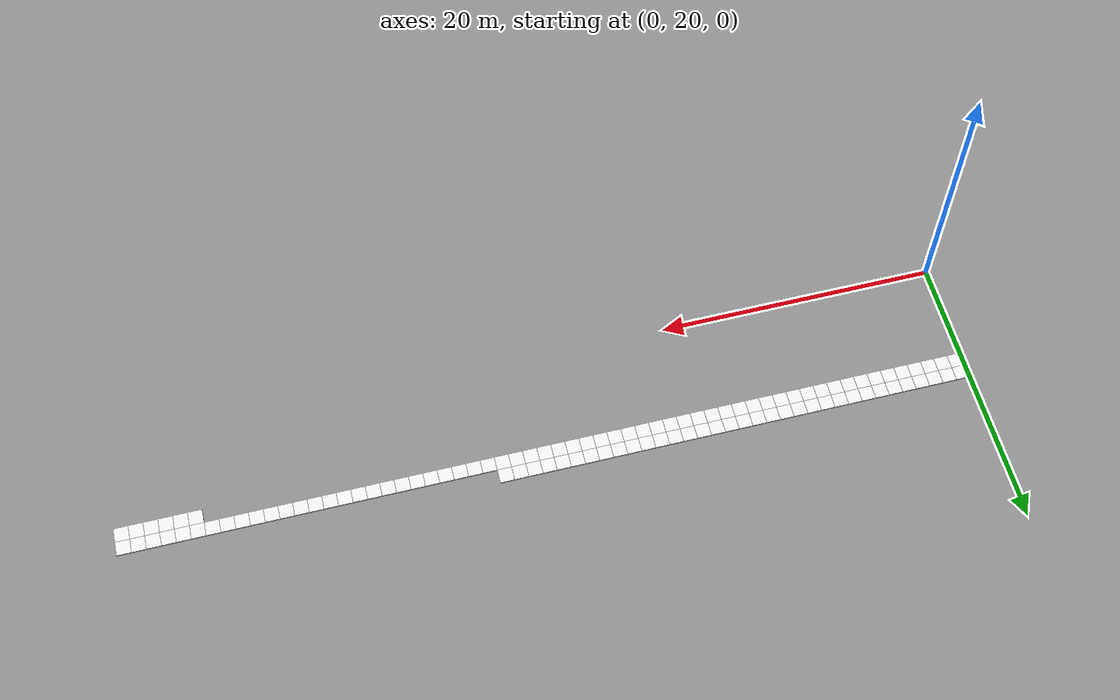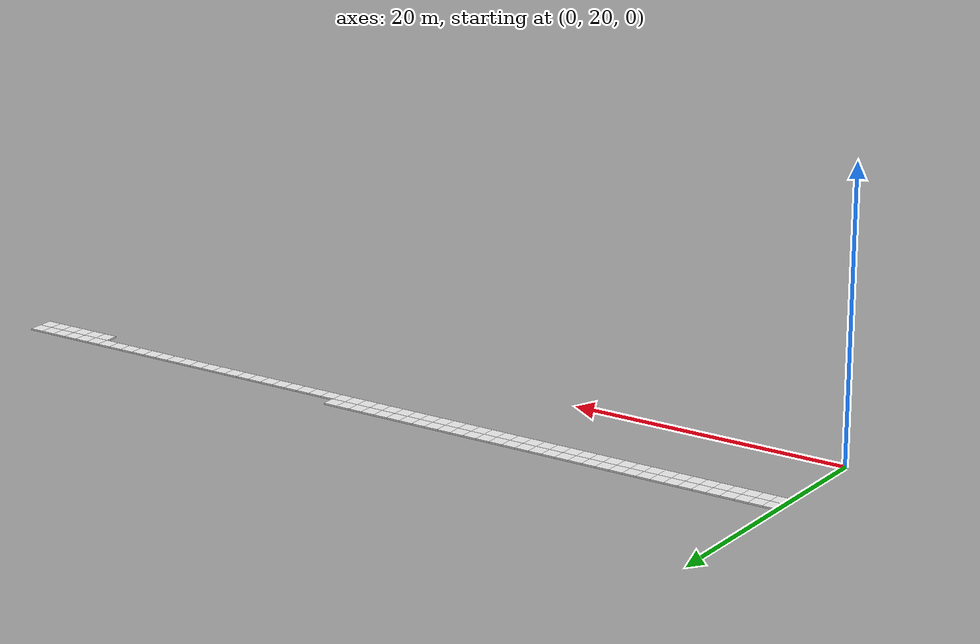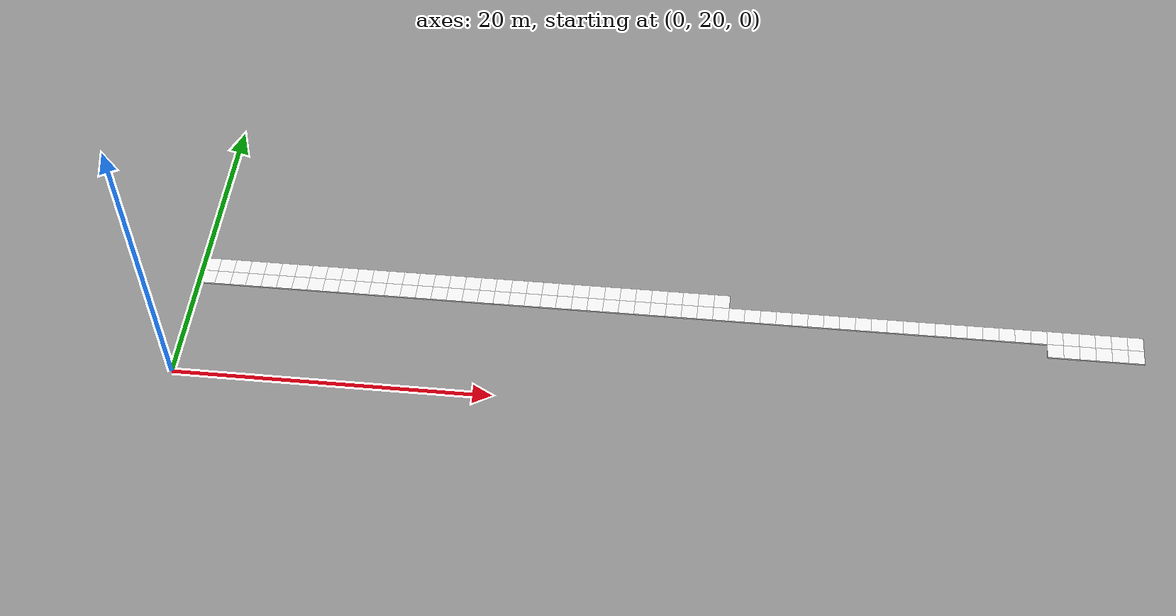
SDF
<sdf version="1.6">
 <world name="grid_world">
  <model name="cell_54_26">
   <static>true</static>
   <link name="link">
    <collision name="collision"><geometry><box><size>1 1 0.1</size></box></geometry></collision>
    <visual name="visual">
     <geometry><box><size>1 1 0.1</size></box></geometry>
     <material>
      <script><uri>file://media/materials/scripts/gazebo.material</uri><name>Gazebo/White</name></script>
     </material>
    </visual>
    <pose>54.5 26.5 0.05 0 0 0</pose>
   </link>
  </model>
  <model name="cell_55_26">
   <static>true</static>
   <link name="link">
    <collision name="collision"><geometry><box><size>1 1 0.1</size></box></geometry></collision>
    <visual name="visual">
     <geometry><box><size>1 1 0.1</size></box></geometry>
     <material>
      <script><uri>file://media/materials/scripts/gazebo.material</uri><name>Gazebo/White</name></script>
     </material>
    </visual>
    <pose>55.5 26.5 0.05 0 0 0</pose>
   </link>
  </model>
  <model name="cell_56_26">
   <static>true</static>
   <link name="link">
    <collision name="collision"><geometry><box><size>1 1 0.1</size></box></geometry></collision>
    <visual name="visual">
     <geometry><box><size>1 1 0.1</size></box></geometry>
     <material>
      <script><uri>file://media/materials/scripts/gazebo.material</uri><name>Gazebo/White</name></script>
     </material>
    </visual>
    <pose>56.5 26.5 0.05 0 0 0</pose>
   </link>
  </model>
  <model name="cell_57_26">
   <static>true</static>
   <link name="link">
    <collision name="collision"><geometry><box><size>1 1 0.1</size></box></geometry></collision>
    <visual name="visual">
     <geometry><box><size>1 1 0.1</size></box></geometry>
     <material>
      <script><uri>file://media/materials/scripts/gazebo.material</uri><name>Gazebo/White</name></script>
     </material>
    </visual>
    <pose>57.5 26.5 0.05 0 0 0</pose>
   </link>
  </model>
  <model name="cell_58_26">
   <static>true</static>
   <link name="link">
    <collision name="collision"><geometry><box><size>1 1 0.1</size></box></geometry></collision>
    <visual name="visual">
     <geometry><box><size>1 1 0.1</size></box></geometry>
     <material>
      <script><uri>file://media/materials/scripts/gazebo.material</uri><name>Gazebo/White</name></script>
     </material>
    </visual>
    <pose>58.5 26.5 0.05 0 0 0</pose>
   </link>
  </model>
  <model name="cell_59_26">
   <static>true</static>
   <link name="link">
    <collision name="collision"><geometry><box><size>1 1 0.1</size></box></geometry></collision>
    <visual name="visual">
     <geometry><box><size>1 1 0.1</size></box></geometry>
     <material>
      <script><uri>file://media/materials/scripts/gazebo.material</uri><name>Gazebo/White</name></script>
     </material>
    </visual>
    <pose>59.5 26.5 0.05 0 0 0</pose>
   </link>
  </model>
  <model name="cell_0_27">
   <static>true</static>
   <link name="link">
    <collision name="collision"><geometry><box><size>1 1 0.1</size></box></geometry></collision>
    <visual name="visual">
     <geometry><box><size>1 1 0.1</size></box></geometry>
     <material>
      <script><uri>file://media/materials/scripts/gazebo.material</uri><name>Gazebo/White</name></script>
     </material>
    </visual>
    <pose>0.5 27.5 0.05 0 0 0</pose>
   </link>
  </model>
  <model name="cell_1_27">
   <static>true</static>
   <link name="link">
    <collision name="collision"><geometry><box><size>1 1 0.1</size></box></geometry></collision>
    <visual name="visual">
     <geometry><box><size>1 1 0.1</size></box></geometry>
     <material>
      <script><uri>file://media/materials/scripts/gazebo.material</uri><name>Gazebo/White</name></script>
     </material>
    </visual>
    <pose>1.5 27.5 0.05 0 0 0</pose>
   </link>
  </model>
  <model name="cell_2_27">
   <static>true</static>
   <link name="link">
    <collision name="collision"><geometry><box><size>1 1 0.1</size></box></geometry></collision>
    <visual name="visual">
     <geometry><box><size>1 1 0.1</size></box></geometry>
     <material>
      <script><uri>file://media/materials/scripts/gazebo.material</uri><name>Gazebo/White</name></script>
     </material>
    </visual>
    <pose>2.5 27.5 0.05 0 0 0</pose>
   </link>
  </model>
  <model name="cell_3_27">
   <static>true</static>
   <link name="link">
    <collision name="collision"><geometry><box><size>1 1 0.1</size></box></geometry></collision>
    <visual name="visual">
     <geometry><box><size>1 1 0.1</size></box></geometry>
     <material>
      <script><uri>file://media/materials/scripts/gazebo.material</uri><name>Gazebo/White</name></script>
     </material>
    </visual>
    <pose>3.5 27.5 0.05 0 0 0</pose>
   </link>
  </model>
  <model name="cell_4_27">
   <static>true</static>
   <link name="link">
    <collision name="collision"><geometry><box><size>1 1 0.1</size></box></geometry></collision>
    <visual name="visual">
     <geometry><box><size>1 1 0.1</size></box></geometry>
     <material>
      <script><uri>file://media/materials/scripts/gazebo.material</uri><name>Gazebo/White</name></script>
     </material>
    </visual>
    <pose>4.5 27.5 0.05 0 0 0</pose>
   </link>
  </model>
  <model name="cell_5_27">
   <static>true</static>
   <link name="link">
    <collision name="collision"><geometry><box><size>1 1 0.1</size></box></geometry></collision>
    <visual name="visual">
     <geometry><box><size>1 1 0.1</size></box></geometry>
     <material>
      <script><uri>file://media/materials/scripts/gazebo.material</uri><name>Gazebo/White</name></script>
     </material>
    </visual>
    <pose>5.5 27.5 0.05 0 0 0</pose>
   </link>
  </model>
  <model name="cell_6_27">
   <static>true</static>
   <link name="link">
    <collision name="collision"><geometry><box><size>1 1 0.1</size></box></geometry></collision>
    <visual name="visual">
     <geometry><box><size>1 1 0.1</size></box></geometry>
     <material>
      <script><uri>file://media/materials/scripts/gazebo.material</uri><name>Gazebo/White</name></script>
     </material>
    </visual>
    <pose>6.5 27.5 0.05 0 0 0</pose>
   </link>
  </model>
  <model name="cell_7_27">
   <static>true</static>
   <link name="link">
    <collision name="collision"><geometry><box><size>1 1 0.1</size></box></geometry></collision>
    <visual name="visual">
     <geometry><box><size>1 1 0.1</size></box></geometry>
     <material>
      <script><uri>file://media/materials/scripts/gazebo.material</uri><name>Gazebo/White</name></script>
     </material>
    </visual>
    <pose>7.5 27.5 0.05 0 0 0</pose>
   </link>
  </model>
  <model name="cell_8_27">
   <static>true</static>
   <link name="link">
    <collision name="collision"><geometry><box><size>1 1 0.1</size></box></geometry></collision>
    <visual name="visual">
     <geometry><box><size>1 1 0.1</size></box></geometry>
     <material>
      <script><uri>file://media/materials/scripts/gazebo.material</uri><name>Gazebo/White</name></script>
     </material>
    </visual>
    <pose>8.5 27.5 0.05 0 0 0</pose>
   </link>
  </model>
  <model name="cell_9_27">
   <static>true</static>
   <link name="link">
    <collision name="collision"><geometry><box><size>1 1 0.1</size></box></geometry></collision>
    <visual name="visual">
     <geometry><box><size>1 1 0.1</size></box></geometry>
     <material>
      <script><uri>file://media/materials/scripts/gazebo.material</uri><name>Gazebo/White</name></script>
     </material>
    </visual>
    <pose>9.5 27.5 0.05 0 0 0</pose>
   </link>
  </model>
  <model name="cell_10_27">
   <static>true</static>
   <link name="link">
    <collision name="collision"><geometry><box><size>1 1 0.1</size></box></geometry></collision>
    <visual name="visual">
     <geometry><box><size>1 1 0.1</size></box></geometry>
     <material>
      <script><uri>file://media/materials/scripts/gazebo.material</uri><name>Gazebo/White</name></script>
     </material>
    </visual>
    <pose>10.5 27.5 0.05 0 0 0</pose>
   </link>
  </model>
  <model name="cell_11_27">
   <static>true</static>
   <link name="link">
    <collision name="collision"><geometry><box><size>1 1 0.1</size></box></geometry></collision>
    <visual name="visual">
     <geometry><box><size>1 1 0.1</size></box></geometry>
     <material>
      <script><uri>file://media/materials/scripts/gazebo.material</uri><name>Gazebo/White</name></script>
     </material>
    </visual>
    <pose>11.5 27.5 0.05 0 0 0</pose>
   </link>
  </model>
  <model name="cell_12_27">
   <static>true</static>
   <link name="link">
    <collision name="collision"><geometry><box><size>1 1 0.1</size></box></geometry></collision>
    <visual name="visual">
     <geometry><box><size>1 1 0.1</size></box></geometry>
     <material>
      <script><uri>file://media/materials/scripts/gazebo.material</uri><name>Gazebo/White</name></script>
     </material>
    </visual>
    <pose>12.5 27.5 0.05 0 0 0</pose>
   </link>
  </model>
  <model name="cell_13_27">
   <static>true</static>
   <link name="link">
    <collision name="collision"><geometry><box><size>1 1 0.1</size></box></geometry></collision>
    <visual name="visual">
     <geometry><box><size>1 1 0.1</size></box></geometry>
     <material>
      <script><uri>file://media/materials/scripts/gazebo.material</uri><name>Gazebo/White</name></script>
     </material>
    </visual>
    <pose>13.5 27.5 0.05 0 0 0</pose>
   </link>
  </model>
  <model name="cell_14_27">
   <static>true</static>
   <link name="link">
    <collision name="collision"><geometry><box><size>1 1 0.1</size></box></geometry></collision>
    <visual name="visual">
     <geometry><box><size>1 1 0.1</size></box></geometry>
     <material>
      <script><uri>file://media/materials/scripts/gazebo.material</uri><name>Gazebo/White</name></script>
     </material>
    </visual>
    <pose>14.5 27.5 0.05 0 0 0</pose>
   </link>
  </model>
  <model name="cell_15_27">
   <static>true</static>
   <link name="link">
    <collision name="collision"><geometry><box><size>1 1 0.1</size></box></geometry></collision>
    <visual name="visual">
     <geometry><box><size>1 1 0.1</size></box></geometry>
     <material>
      <script><uri>file://media/materials/scripts/gazebo.material</uri><name>Gazebo/White</name></script>
     </material>
    </visual>
    <pose>15.5 27.5 0.05 0 0 0</pose>
   </link>
  </model>
  <model name="cell_16_27">
   <static>true</static>
   <link name="link">
    <collision name="collision"><geometry><box><size>1 1 0.1</size></box></geometry></collision>
    <visual name="visual">
     <geometry><box><size>1 1 0.1</size></box></geometry>
     <material>
      <script><uri>file://media/materials/scripts/gazebo.material</uri><name>Gazebo/White</name></script>
     </material>
    </visual>
    <pose>16.5 27.5 0.05 0 0 0</pose>
   </link>
  </model>
  <model name="cell_17_27">
   <static>true</static>
   <link name="link">
    <collision name="collision"><geometry><box><size>1 1 0.1</size></box></geometry></collision>
    <visual name="visual">
     <geometry><box><size>1 1 0.1</size></box></geometry>
     <material>
      <script><uri>file://media/materials/scripts/gazebo.material</uri><name>Gazebo/White</name></script>
     </material>
    </visual>
    <pose>17.5 27.5 0.05 0 0 0</pose>
   </link>
  </model>
  <model name="cell_18_27">
   <static>true</static>
   <link name="link">
    <collision name="collision"><geometry><box><size>1 1 0.1</size></box></geometry></collision>
    <visual name="visual">
     <geometry><box><size>1 1 0.1</size></box></geometry>
     <material>
      <script><uri>file://media/materials/scripts/gazebo.material</uri><name>Gazebo/White</name></script>
     </material>
    </visual>
    <pose>18.5 27.5 0.05 0 0 0</pose>
   </link>
  </model>
  <model name="cell_19_27">
   <static>true</static>
   <link name="link">
    <collision name="collision"><geometry><box><size>1 1 0.1</size></box></geometry></collision>
    <visual name="visual">
     <geometry><box><size>1 1 0.1</size></box></geometry>
     <material>
      <script><uri>file://media/materials/scripts/gazebo.material</uri><name>Gazebo/White</name></script>
     </material>
    </visual>
    <pose>19.5 27.5 0.05 0 0 0</pose>
   </link>
  </model>
  <model name="cell_20_27">
   <static>true</static>
   <link name="link">
    <collision name="collision"><geometry><box><size>1 1 0.1</size></box></geometry></collision>
    <visual name="visual">
     <geometry><box><size>1 1 0.1</size></box></geometry>
     <material>
      <script><uri>file://media/materials/scripts/gazebo.material</uri><name>Gazebo/White</name></script>
     </material>
    </visual>
    <pose>20.5 27.5 0.05 0 0 0</pose>
   </link>
  </model>
  <model name="cell_21_27">
   <static>true</static>
   <link name="link">
    <collision name="collision"><geometry><box><size>1 1 0.1</size></box></geometry></collision>
    <visual name="visual">
     <geometry><box><size>1 1 0.1</size></box></geometry>
     <material>
      <script><uri>file://media/materials/scripts/gazebo.material</uri><name>Gazebo/White</name></script>
     </material>
    </visual>
    <pose>21.5 27.5 0.05 0 0 0</pose>
   </link>
  </model>
  <model name="cell_22_27">
   <static>true</static>
   <link name="link">
    <collision name="collision"><geometry><box><size>1 1 0.1</size></box></geometry></collision>
    <visual name="visual">
     <geometry><box><size>1 1 0.1</size></box></geometry>
     <material>
      <script><uri>file://media/materials/scripts/gazebo.material</uri><name>Gazebo/White</name></script>
     </material>
    </visual>
    <pose>22.5 27.5 0.05 0 0 0</pose>
   </link>
  </model>
  <model name="cell_23_27">
   <static>true</static>
   <link name="link">
    <collision name="collision"><geometry><box><size>1 1 0.1</size></box></geometry></collision>
    <visual name="visual">
     <geometry><box><size>1 1 0.1</size></box></geometry>
     <material>
      <script><uri>file://media/materials/scripts/gazebo.material</uri><name>Gazebo/White</name></script>
     </material>
    </visual>
    <pose>23.5 27.5 0.05 0 0 0</pose>
   </link>
  </model>
  <model name="cell_24_27">
   <static>true</static>
   <link name="link">
    <collision name="collision"><geometry><box><size>1 1 0.1</size></box></geometry></collision>
    <visual name="visual">
     <geometry><box><size>1 1 0.1</size></box></geometry>
     <material>
      <script><uri>file://media/materials/scripts/gazebo.material</uri><name>Gazebo/White</name></script>
     </material>
    </visual>
    <pose>24.5 27.5 0.05 0 0 0</pose>
   </link>
  </model>
  <model name="cell_25_27">
   <static>true</static>
   <link name="link">
    <collision name="collision"><geometry><box><size>1 1 0.1</size></box></geometry></collision>
    <visual name="visual">
     <geometry><box><size>1 1 0.1</size></box></geometry>
     <material>
      <script><uri>file://media/materials/scripts/gazebo.material</uri><name>Gazebo/White</name></script>
     </material>
    </visual>
    <pose>25.5 27.5 0.05 0 0 0</pose>
   </link>
  </model>
  <model name="cell_26_27">
   <static>true</static>
   <link name="link">
    <collision name="collision"><geometry><box><size>1 1 0.1</size></box></geometry></collision>
    <visual name="visual">
     <geometry><box><size>1 1 0.1</size></box></geometry>
     <material>
      <script><uri>file://media/materials/scripts/gazebo.material</uri><name>Gazebo/White</name></script>
     </material>
    </visual>
    <pose>26.5 27.5 0.05 0 0 0</pose>
   </link>
  </model>
  <model name="cell_27_27">
   <static>true</static>
   <link name="link">
    <collision name="collision"><geometry><box><size>1 1 0.1</size></box></geometry></collision>
    <visual name="visual">
     <geometry><box><size>1 1 0.1</size></box></geometry>
     <material>
      <script><uri>file://media/materials/scripts/gazebo.material</uri><name>Gazebo/White</name></script>
     </material>
    </visual>
    <pose>27.5 27.5 0.05 0 0 0</pose>
   </link>
  </model>
  <model name="cell_28_27">
   <static>true</static>
   <link name="link">
    <collision name="collision"><geometry><box><size>1 1 0.1</size></box></geometry></collision>
    <visual name="visual">
     <geometry><box><size>1 1 0.1</size></box></geometry>
     <material>
      <script><uri>file://media/materials/scripts/gazebo.material</uri><name>Gazebo/White</name></script>
     </material>
    </visual>
    <pose>28.5 27.5 0.05 0 0 0</pose>
   </link>
  </model>
  <model name="cell_29_27">
   <static>true</static>
   <link name="link">
    <collision name="collision"><geometry><box><size>1 1 0.1</size></box></geometry></collision>
    <visual name="visual">
     <geometry><box><size>1 1 0.1</size></box></geometry>
     <material>
      <script><uri>file://media/materials/scripts/gazebo.material</uri><name>Gazebo/White</name></script>
     </material>
    </visual>
    <pose>29.5 27.5 0.05 0 0 0</pose>
   </link>
  </model>
  <model name="cell_30_27">
   <static>true</static>
   <link name="link">
    <collision name="collision"><geometry><box><size>1 1 0.1</size></box></geometry></collision>
    <visual name="visual">
     <geometry><box><size>1 1 0.1</size></box></geometry>
     <material>
      <script><uri>file://media/materials/scripts/gazebo.material</uri><name>Gazebo/White</name></script>
     </material>
    </visual>
    <pose>30.5 27.5 0.05 0 0 0</pose>
   </link>
  </model>
  <model name="cell_31_27">
   <static>true</static>
   <link name="link">
    <collision name="collision"><geometry><box><size>1 1 0.1</size></box></geometry></collision>
    <visual name="visual">
     <geometry><box><size>1 1 0.1</size></box></geometry>
     <material>
      <script><uri>file://media/materials/scripts/gazebo.material</uri><name>Gazebo/White</name></script>
     </material>
    </visual>
    <pose>31.5 27.5 0.05 0 0 0</pose>
   </link>
  </model>
  <model name="cell_32_27">
   <static>true</static>
   <link name="link">
    <collision name="collision"><geometry><box><size>1 1 0.1</size></box></geometry></collision>
    <visual name="visual">
     <geometry><box><size>1 1 0.1</size></box></geometry>
     <material>
      <script><uri>file://media/materials/scripts/gazebo.material</uri><name>Gazebo/White</name></script>
     </material>
    </visual>
    <pose>32.5 27.5 0.05 0 0 0</pose>
   </link>
  </model>
  <model name="cell_33_27">
   <static>true</static>
   <link name="link">
    <collision name="collision"><geometry><box><size>1 1 0.1</size></box></geometry></collision>
    <visual name="visual">
     <geometry><box><size>1 1 0.1</size></box></geometry>
     <material>
      <script><uri>file://media/materials/scripts/gazebo.material</uri><name>Gazebo/White</name></script>
     </material>
    </visual>
    <pose>33.5 27.5 0.05 0 0 0</pose>
   </link>
  </model>
  <model name="cell_34_27">
   <static>true</static>
   <link name="link">
    <collision name="collision"><geometry><box><size>1 1 0.1</size></box></geometry></collision>
    <visual name="visual">
     <geometry><box><size>1 1 0.1</size></box></geometry>
     <material>
      <script><uri>file://media/materials/scripts/gazebo.material</uri><name>Gazebo/White</name></script>
     </material>
    </visual>
    <pose>34.5 27.5 0.05 0 0 0</pose>
   </link>
  </model>
  <model name="cell_35_27">
   <static>true</static>
   <link name="link">
    <collision name="collision"><geometry><box><size>1 1 0.1</size></box></geometry></collision>
    <visual name="visual">
     <geometry><box><size>1 1 0.1</size></box></geometry>
     <material>
      <script><uri>file://media/materials/scripts/gazebo.material</uri><name>Gazebo/White</name></script>
     </material>
    </visual>
    <pose>35.5 27.5 0.05 0 0 0</pose>
   </link>
  </model>
  <model name="cell_36_27">
   <static>true</static>
   <link name="link">
    <collision name="collision"><geometry><box><size>1 1 0.1</size></box></geometry></collision>
    <visual name="visual">
     <geometry><box><size>1 1 0.1</size></box></geometry>
     <material>
      <script><uri>file://media/materials/scripts/gazebo.material</uri><name>Gazebo/White</name></script>
     </material>
    </visual>
    <pose>36.5 27.5 0.05 0 0 0</pose>
   </link>
  </model>
  <model name="cell_37_27">
   <static>true</static>
   <link name="link">
    <collision name="collision"><geometry><box><size>1 1 0.1</size></box></geometry></collision>
    <visual name="visual">
     <geometry><box><size>1 1 0.1</size></box></geometry>
     <material>
      <script><uri>file://media/materials/scripts/gazebo.material</uri><name>Gazebo/White</name></script>
     </material>
    </visual>
    <pose>37.5 27.5 0.05 0 0 0</pose>
   </link>
  </model>
  <model name="cell_38_27">
   <static>true</static>
   <link name="link">
    <collision name="collision"><geometry><box><size>1 1 0.1</size></box></geometry></collision>
    <visual name="visual">
     <geometry><box><size>1 1 0.1</size></box></geometry>
     <material>
      <script><uri>file://media/materials/scripts/gazebo.material</uri><name>Gazebo/White</name></script>
     </material>
    </visual>
    <pose>38.5 27.5 0.05 0 0 0</pose>
   </link>
  </model>
  <model name="cell_39_27">
   <static>true</static>
   <link name="link">
    <collision name="collision"><geometry><box><size>1 1 0.1</size></box></geometry></collision>
    <visual name="visual">
     <geometry><box><size>1 1 0.1</size></box></geometry>
     <material>
      <script><uri>file://media/materials/scripts/gazebo.material</uri><name>Gazebo/White</name></script>
     </material>
    </visual>
    <pose>39.5 27.5 0.05 0 0 0</pose>
   </link>
  </model>
  <model name="cell_40_27">
   <static>true</static>
   <link name="link">
    <collision name="collision"><geometry><box><size>1 1 0.1</size></box></geometry></collision>
    <visual name="visual">
     <geometry><box><size>1 1 0.1</size></box></geometry>
     <material>
      <script><uri>file://media/materials/scripts/gazebo.material</uri><name>Gazebo/White</name></script>
     </material>
    </visual>
    <pose>40.5 27.5 0.05 0 0 0</pose>
   </link>
  </model>
  <model name="cell_41_27">
   <static>true</static>
   <link name="link">
    <collision name="collision"><geometry><box><size>1 1 0.1</size></box></geometry></collision>
    <visual name="visual">
     <geometry><box><size>1 1 0.1</size></box></geometry>
     <material>
      <script><uri>file://media/materials/scripts/gazebo.material</uri><name>Gazebo/White</name></script>
     </material>
    </visual>
    <pose>41.5 27.5 0.05 0 0 0</pose>
   </link>
  </model>
  <model name="cell_42_27">
   <static>true</static>
   <link name="link">
    <collision name="collision"><geometry><box><size>1 1 0.1</size></box></geometry></collision>
    <visual name="visual">
     <geometry><box><size>1 1 0.1</size></box></geometry>
     <material>
      <script><uri>file://media/materials/scripts/gazebo.material</uri><name>Gazebo/White</name></script>
     </material>
    </visual>
    <pose>42.5 27.5 0.05 0 0 0</pose>
   </link>
  </model>
  <model name="cell_43_27">
   <static>true</static>
   <link name="link">
    <collision name="collision"><geometry><box><size>1 1 0.1</size></box></geometry></collision>
    <visual name="visual">
     <geometry><box><size>1 1 0.1</size></box></geometry>
     <material>
      <script><uri>file://media/materials/scripts/gazebo.material</uri><name>Gazebo/White</name></script>
     </material>
    </visual>
    <pose>43.5 27.5 0.05 0 0 0</pose>
   </link>
  </model>
  <model name="cell_44_27">
   <static>true</static>
   <link name="link">
    <collision name="collision"><geometry><box><size>1 1 0.1</size></box></geometry></collision>
    <visual name="visual">
     <geometry><box><size>1 1 0.1</size></box></geometry>
     <material>
      <script><uri>file://media/materials/scripts/gazebo.material</uri><name>Gazebo/White</name></script>
     </material>
    </visual>
    <pose>44.5 27.5 0.05 0 0 0</pose>
   </link>
  </model>
  <model name="cell_45_27">
   <static>true</static>
   <link name="link">
    <collision name="collision"><geometry><box><size>1 1 0.1</size></box></geometry></collision>
    <visual name="visual">
     <geometry><box><size>1 1 0.1</size></box></geometry>
     <material>
      <script><uri>file://media/materials/scripts/gazebo.material</uri><name>Gazebo/White</name></script>
     </material>
    </visual>
    <pose>45.5 27.5 0.05 0 0 0</pose>
   </link>
  </model>
  <model name="cell_46_27">
   <static>true</static>
   <link name="link">
    <collision name="collision"><geometry><box><size>1 1 0.1</size></box></geometry></collision>
    <visual name="visual">
     <geometry><box><size>1 1 0.1</size></box></geometry>
     <material>
      <script><uri>file://media/materials/scripts/gazebo.material</uri><name>Gazebo/White</name></script>
     </material>
    </visual>
    <pose>46.5 27.5 0.05 0 0 0</pose>
   </link>
  </model>
  <model name="cell_47_27">
   <static>true</static>
   <link name="link">
    <collision name="collision"><geometry><box><size>1 1 0.1</size></box></geometry></collision>
    <visual name="visual">
     <geometry><box><size>1 1 0.1</size></box></geometry>
     <material>
      <script><uri>file://media/materials/scripts/gazebo.material</uri><name>Gazebo/White</name></script>
     </material>
    </visual>
    <pose>47.5 27.5 0.05 0 0 0</pose>
   </link>
  </model>
  <model name="cell_48_27">
   <static>true</static>
   <link name="link">
    <collision name="collision"><geometry><box><size>1 1 0.1</size></box></geometry></collision>
    <visual name="visual">
     <geometry><box><size>1 1 0.1</size></box></geometry>
     <material>
      <script><uri>file://media/materials/scripts/gazebo.material</uri><name>Gazebo/White</name></script>
     </material>
    </visual>
    <pose>48.5 27.5 0.05 0 0 0</pose>
   </link>
  </model>
  <model name="cell_49_27">
   <static>true</static>
   <link name="link">
    <collision name="collision"><geometry><box><size>1 1 0.1</size></box></geometry></collision>
    <visual name="visual">
     <geometry><box><size>1 1 0.1</size></box></geometry>
     <material>
      <script><uri>file://media/materials/scripts/gazebo.material</uri><name>Gazebo/White</name></script>
     </material>
    </visual>
    <pose>49.5 27.5 0.05 0 0 0</pose>
   </link>
  </model>
  <model name="cell_50_27">
   <static>true</static>
   <link name="link">
    <collision name="collision"><geometry><box><size>1 1 0.1</size></box></geometry></collision>
    <visual name="visual">
     <geometry><box><size>1 1 0.1</size></box></geometry>
     <material>
      <script><uri>file://media/materials/scripts/gazebo.material</uri><name>Gazebo/White</name></script>
     </material>
    </visual>
    <pose>50.5 27.5 0.05 0 0 0</pose>
   </link>
  </model>
  <model name="cell_51_27">
   <static>true</static>
   <link name="link">
    <collision name="collision"><geometry><box><size>1 1 0.1</size></box></geometry></collision>
    <visual name="visual">
     <geometry><box><size>1 1 0.1</size></box></geometry>
     <material>
      <script><uri>file://media/materials/scripts/gazebo.material</uri><name>Gazebo/White</name></script>
     </material>
    </visual>
    <pose>51.5 27.5 0.05 0 0 0</pose>
   </link>
  </model>
  <model name="cell_52_27">
   <static>true</static>
   <link name="link">
    <collision name="collision"><geometry><box><size>1 1 0.1</size></box></geometry></collision>
    <visual name="visual">
     <geometry><box><size>1 1 0.1</size></box></geometry>
     <material>
      <script><uri>file://media/materials/scripts/gazebo.material</uri><name>Gazebo/White</name></script>
     </material>
    </visual>
    <pose>52.5 27.5 0.05 0 0 0</pose>
   </link>
  </model>
  <model name="cell_53_27">
   <static>true</static>
   <link name="link">
    <collision name="collision"><geometry><box><size>1 1 0.1</size></box></geometry></collision>
    <visual name="visual">
     <geometry><box><size>1 1 0.1</size></box></geometry>
     <material>
      <script><uri>file://media/materials/scripts/gazebo.material</uri><name>Gazebo/White</name></script>
     </material>
    </visual>
    <pose>53.5 27.5 0.05 0 0 0</pose>
   </link>
  </model>
  <model name="cell_54_27">
   <static>true</static>
   <link name="link">
    <collision name="collision"><geometry><box><size>1 1 0.1</size></box></geometry></collision>
    <visual name="visual">
     <geometry><box><size>1 1 0.1</size></box></geometry>
     <material>
      <script><uri>file://media/materials/scripts/gazebo.material</uri><name>Gazebo/White</name></script>
     </material>
    </visual>
    <pose>54.5 27.5 0.05 0 0 0</pose>
   </link>
  </model>
  <model name="cell_55_27">
   <static>true</static>
   <link name="link">
    <collision name="collision"><geometry><box><size>1 1 0.1</size></box></geometry></collision>
    <visual name="visual">
     <geometry><box><size>1 1 0.1</size></box></geometry>
     <material>
      <script><uri>file://media/materials/scripts/gazebo.material</uri><name>Gazebo/White</name></script>
     </material>
    </visual>
    <pose>55.5 27.5 0.05 0 0 0</pose>
   </link>
  </model>
  <model name="cell_56_27">
   <static>true</static>
   <link name="link">
    <collision name="collision"><geometry><box><size>1 1 0.1</size></box></geometry></collision>
    <visual name="visual">
     <geometry><box><size>1 1 0.1</size></box></geometry>
     <material>
      <script><uri>file://media/materials/scripts/gazebo.material</uri><name>Gazebo/White</name></script>
     </material>
    </visual>
    <pose>56.5 27.5 0.05 0 0 0</pose>
   </link>
  </model>
  <model name="cell_57_27">
   <static>true</static>
   <link name="link">
    <collision name="collision"><geometry><box><size>1 1 0.1</size></box></geometry></collision>
    <visual name="visual">
     <geometry><box><size>1 1 0.1</size></box></geometry>
     <material>
      <script><uri>file://media/materials/scripts/gazebo.material</uri><name>Gazebo/White</name></script>
     </material>
    </visual>
    <pose>57.5 27.5 0.05 0 0 0</pose>
   </link>
  </model>
  <model name="cell_58_27">
   <static>true</static>
   <link name="link">
    <collision name="collision"><geometry><box><size>1 1 0.1</size></box></geometry></collision>
    <visual name="visual">
     <geometry><box><size>1 1 0.1</size></box></geometry>
     <material>
      <script><uri>file://media/materials/scripts/gazebo.material</uri><name>Gazebo/White</name></script>
     </material>
    </visual>
    <pose>58.5 27.5 0.05 0 0 0</pose>
   </link>
  </model>
  <model name="cell_59_27">
   <static>true</static>
   <link name="link">
    <collision name="collision"><geometry><box><size>1 1 0.1</size></box></geometry></collision>
    <visual name="visual">
     <geometry><box><size>1 1 0.1</size></box></geometry>
     <material>
      <script><uri>file://media/materials/scripts/gazebo.material</uri><name>Gazebo/White</name></script>
     </material>
    </visual>
    <pose>59.5 27.5 0.05 0 0 0</pose>
   </link>
  </model>
  <model name="cell_0_28">
   <static>true</static>
   <link name="link">
    <collision name="collision"><geometry><box><size>1 1 0.1</size></box></geometry></collision>
    <visual name="visual">
     <geometry><box><size>1 1 0.1</size></box></geometry>
     <material>
      <script><uri>file://media/materials/scripts/gazebo.material</uri><name>Gazebo/White</name></script>
     </material>
    </visual>
    <pose>0.5 28.5 0.05 0 0 0</pose>
   </link>
  </model>
  <model name="cell_1_28">
   <static>true</static>
   <link name="link">
    <collision name="collision"><geometry><box><size>1 1 0.1</size></box></geometry></collision>
    <visual name="visual">
     <geometry><box><size>1 1 0.1</size></box></geometry>
     <material>
      <script><uri>file://media/materials/scripts/gazebo.material</uri><name>Gazebo/White</name></script>
     </material>
    </visual>
    <pose>1.5 28.5 0.05 0 0 0</pose>
   </link>
  </model>
  <model name="cell_2_28">
   <static>true</static>
   <link name="link">
    <collision name="collision"><geometry><box><size>1 1 0.1</size></box></geometry></collision>
    <visual name="visual">
     <geometry><box><size>1 1 0.1</size></box></geometry>
     <material>
      <script><uri>file://media/materials/scripts/gazebo.material</uri><name>Gazebo/White</name></script>
     </material>
    </visual>
    <pose>2.5 28.5 0.05 0 0 0</pose>
   </link>
  </model>
  <model name="cell_3_28">
   <static>true</static>
   <link name="link">
    <collision name="collision"><geometry><box><size>1 1 0.1</size></box></geometry></collision>
    <visual name="visual">
     <geometry><box><size>1 1 0.1</size></box></geometry>
     <material>
      <script><uri>file://media/materials/scripts/gazebo.material</uri><name>Gazebo/White</name></script>
     </material>
    </visual>
    <pose>3.5 28.5 0.05 0 0 0</pose>
   </link>
  </model>
  <model name="cell_4_28">
   <static>true</static>
   <link name="link">
    <collision name="collision"><geometry><box><size>1 1 0.1</size></box></geometry></collision>
    <visual name="visual">
     <geometry><box><size>1 1 0.1</size></box></geometry>
     <material>
      <script><uri>file://media/materials/scripts/gazebo.material</uri><name>Gazebo/White</name></script>
     </material>
    </visual>
    <pose>4.5 28.5 0.05 0 0 0</pose>
   </link>
  </model>
  <model name="cell_5_28">
   <static>true</static>
   <link name="link">
    <collision name="collision"><geometry><box><size>1 1 0.1</size></box></geometry></collision>
    <visual name="visual">
     <geometry><box><size>1 1 0.1</size></box></geometry>
     <material>
      <script><uri>file://media/materials/scripts/gazebo.material</uri><name>Gazebo/White</name></script>
     </material>
    </visual>
    <pose>5.5 28.5 0.05 0 0 0</pose>
   </link>
  </model>
  <model name="cell_6_28">
   <static>true</static>
   <link name="link">
    <collision name="collision"><geometry><box><size>1 1 0.1</size></box></geometry></collision>
    <visual name="visual">
     <geometry><box><size>1 1 0.1</size></box></geometry>
     <material>
      <script><uri>file://media/materials/scripts/gazebo.material</uri><name>Gazebo/White</name></script>
     </material>
    </visual>
    <pose>6.5 28.5 0.05 0 0 0</pose>
   </link>
  </model>
  <model name="cell_7_28">
   <static>true</static>
   <link name="link">
    <collision name="collision"><geometry><box><size>1 1 0.1</size></box></geometry></collision>
    <visual name="visual">
     <geometry><box><size>1 1 0.1</size></box></geometry>
     <material>
      <script><uri>file://media/materials/scripts/gazebo.material</uri><name>Gazebo/White</name></script>
     </material>
    </visual>
    <pose>7.5 28.5 0.05 0 0 0</pose>
   </link>
  </model>
  <model name="cell_8_28">
   <static>true</static>
   <link name="link">
    <collision name="collision"><geometry><box><size>1 1 0.1</size></box></geometry></collision>
    <visual name="visual">
     <geometry><box><size>1 1 0.1</size></box></geometry>
     <material>
      <script><uri>file://media/materials/scripts/gazebo.material</uri><name>Gazebo/White</name></script>
     </material>
    </visual>
    <pose>8.5 28.5 0.05 0 0 0</pose>
   </link>
  </model>
  <model name="cell_9_28">
   <static>true</static>
   <link name="link">
    <collision name="collision"><geometry><box><size>1 1 0.1</size></box></geometry></collision>
    <visual name="visual">
     <geometry><box><size>1 1 0.1</size></box></geometry>
     <material>
      <script><uri>file://media/materials/scripts/gazebo.material</uri><name>Gazebo/White</name></script>
     </material>
    </visual>
    <pose>9.5 28.5 0.05 0 0 0</pose>
   </link>
  </model>
  <model name="cell_10_28">
   <static>true</static>
   <link name="link">
    <collision name="collision"><geometry><box><size>1 1 0.1</size></box></geometry></collision>
    <visual name="visual">
     <geometry><box><size>1 1 0.1</size></box></geometry>
     <material>
      <script><uri>file://media/materials/scripts/gazebo.material</uri><name>Gazebo/White</name></script>
     </material>
    </visual>
    <pose>10.5 28.5 0.05 0 0 0</pose>
   </link>
  </model>
  <model name="cell_11_28">
   <static>true</static>
   <link name="link">
    <collision name="collision"><geometry><box><size>1 1 0.1</size></box></geometry></collision>
    <visual name="visual">
     <geometry><box><size>1 1 0.1</size></box></geometry>
     <material>
      <script><uri>file://media/materials/scripts/gazebo.material</uri><name>Gazebo/White</name></script>
     </material>
    </visual>
    <pose>11.5 28.5 0.05 0 0 0</pose>
   </link>
  </model>
  <model name="cell_12_28">
   <static>true</static>
   <link name="link">
    <collision name="collision"><geometry><box><size>1 1 0.1</size></box></geometry></collision>
    <visual name="visual">
     <geometry><box><size>1 1 0.1</size></box></geometry>
     <material>
      <script><uri>file://media/materials/scripts/gazebo.material</uri><name>Gazebo/White</name></script>
     </material>
    </visual>
    <pose>12.5 28.5 0.05 0 0 0</pose>
   </link>
  </model>
  <model name="cell_13_28">
   <static>true</static>
   <link name="link">
    <collision name="collision"><geometry><box><size>1 1 0.1</size></box></geometry></collision>
    <visual name="visual">
     <geometry><box><size>1 1 0.1</size></box></geometry>
     <material>
      <script><uri>file://media/materials/scripts/gazebo.material</uri><name>Gazebo/White</name></script>
     </material>
    </visual>
    <pose>13.5 28.5 0.05 0 0 0</pose>
   </link>
  </model>
  <model name="cell_14_28">
   <static>true</static>
   <link name="link">
    <collision name="collision"><geometry><box><size>1 1 0.1</size></box></geometry></collision>
    <visual name="visual">
     <geometry><box><size>1 1 0.1</size></box></geometry>
     <material>
      <script><uri>file://media/materials/scripts/gazebo.material</uri><name>Gazebo/White</name></script>
     </material>
    </visual>
    <pose>14.5 28.5 0.05 0 0 0</pose>
   </link>
  </model>
  <model name="cell_15_28">
   <static>true</static>
   <link name="link">
    <collision name="collision"><geometry><box><size>1 1 0.1</size></box></geometry></collision>
    <visual name="visual">
     <geometry><box><size>1 1 0.1</size></box></geometry>
     <material>
      <script><uri>file://media/materials/scripts/gazebo.material</uri><name>Gazebo/White</name></script>
     </material>
    </visual>
    <pose>15.5 28.5 0.05 0 0 0</pose>
   </link>
  </model>
  <model name="cell_16_28">
   <static>true</static>
   <link name="link">
    <collision name="collision"><geometry><box><size>1 1 0.1</size></box></geometry></collision>
    <visual name="visual">
     <geometry><box><size>1 1 0.1</size></box></geometry>
     <material>
      <script><uri>file://media/materials/scripts/gazebo.material</uri><name>Gazebo/White</name></script>
     </material>
    </visual>
    <pose>16.5 28.5 0.05 0 0 0</pose>
   </link>
  </model>
  <model name="cell_17_28">
   <static>true</static>
   <link name="link">
    <collision name="collision"><geometry><box><size>1 1 0.1</size></box></geometry></collision>
    <visual name="visual">
     <geometry><box><size>1 1 0.1</size></box></geometry>
     <material>
      <script><uri>file://media/materials/scripts/gazebo.material</uri><name>Gazebo/White</name></script>
     </material>
    </visual>
    <pose>17.5 28.5 0.05 0 0 0</pose>
   </link>
  </model>
  <model name="cell_18_28">
   <static>true</static>
   <link name="link">
    <collision name="collision"><geometry><box><size>1 1 0.1</size></box></geometry></collision>
    <visual name="visual">
     <geometry><box><size>1 1 0.1</size></box></geometry>
     <material>
      <script><uri>file://media/materials/scripts/gazebo.material</uri><name>Gazebo/White</name></script>
     </material>
    </visual>
    <pose>18.5 28.5 0.05 0 0 0</pose>
   </link>
  </model>
  <model name="cell_19_28">
   <static>true</static>
   <link name="link">
    <collision name="collision"><geometry><box><size>1 1 0.1</size></box></geometry></collision>
    <visual name="visual">
     <geometry><box><size>1 1 0.1</size></box></geometry>
     <material>
      <script><uri>file://media/materials/scripts/gazebo.material</uri><name>Gazebo/White</name></script>
     </material>
    </visual>
    <pose>19.5 28.5 0.05 0 0 0</pose>
   </link>
  </model>
  <model name="cell_20_28">
   <static>true</static>
   <link name="link">
    <collision name="collision"><geometry><box><size>1 1 0.1</size></box></geometry></collision>
    <visual name="visual">
     <geometry><box><size>1 1 0.1</size></box></geometry>
     <material>
      <script><uri>file://media/materials/scripts/gazebo.material</uri><name>Gazebo/White</name></script>
     </material>
    </visual>
    <pose>20.5 28.5 0.05 0 0 0</pose>
   </link>
  </model>
  <model name="cell_21_28">
   <static>true</static>
   <link name="link">
    <collision name="collision"><geometry><box><size>1 1 0.1</size></box></geometry></collision>
    <visual name="visual">
     <geometry><box><size>1 1 0.1</size></box></geometry>
     <material>
      <script><uri>file://media/materials/scripts/gazebo.material</uri><name>Gazebo/White</name></script>
     </material>
    </visual>
    <pose>21.5 28.5 0.05 0 0 0</pose>
   </link>
  </model>
  <model name="cell_22_28">
   <static>true</static>
   <link name="link">
    <collision name="collision"><geometry><box><size>1 1 0.1</size></box></geometry></collision>
    <visual name="visual">
     <geometry><box><size>1 1 0.1</size></box></geometry>
     <material>
      <script><uri>file://media/materials/scripts/gazebo.material</uri><name>Gazebo/White</name></script>
     </material>
    </visual>
    <pose>22.5 28.5 0.05 0 0 0</pose>
   </link>
  </model>
  <model name="cell_23_28">
   <static>true</static>
   <link name="link">
    <collision name="collision"><geometry><box><size>1 1 0.1</size></box></geometry></collision>
    <visual name="visual">
     <geometry><box><size>1 1 0.1</size></box></geometry>
     <material>
      <script><uri>file://media/materials/scripts/gazebo.material</uri><name>Gazebo/White</name></script>
     </material>
    </visual>
    <pose>23.5 28.5 0.05 0 0 0</pose>
   </link>
  </model>
  <model name="cell_24_28">
   <static>true</static>
   <link name="link">
    <collision name="collision"><geometry><box><size>1 1 0.1</size></box></geometry></collision>
    <visual name="visual">
     <geometry><box><size>1 1 0.1</size></box></geometry>
     <material>
      <script><uri>file://media/materials/scripts/gazebo.material</uri><name>Gazebo/White</name></script>
     </material>
    </visual>
    <pose>24.5 28.5 0.05 0 0 0</pose>
   </link>
  </model>
  <model name="cell_25_28">
   <static>true</static>
   <link name="link">
    <collision name="collision"><geometry><box><size>1 1 0.1</size></box></geometry></collision>
    <visual name="visual">
     <geometry><box><size>1 1 0.1</size></box></geometry>
     <material>
      <script><uri>file://media/materials/scripts/gazebo.material</uri><name>Gazebo/White</name></script>
     </material>
    </visual>
    <pose>25.5 28.5 0.05 0 0 0</pose>
   </link>
  </model>
  <model name="cell_26_28">
   <static>true</static>
   <link name="link">
    <collision name="collision"><geometry><box><size>1 1 0.1</size></box></geometry></collision>
    <visual name="visual">
     <geometry><box><size>1 1 0.1</size></box></geometry>
     <material>
      <script><uri>file://media/materials/scripts/gazebo.material</uri><name>Gazebo/White</name></script>
     </material>
    </visual>
    <pose>26.5 28.5 0.05 0 0 0</pose>
   </link>
  </model>
  <model name="cell_27_28">
   <static>true</static>
   <link name="link">
    <collision name="collision"><geometry><box><size>1 1 0.1</size></box></geometry></collision>
    <visual name="visual">
     <geometry><box><size>1 1 0.1</size></box></geometry>
     <material>
      <script><uri>file://media/materials/scripts/gazebo.material</uri><name>Gazebo/White</name></script>
     </material>
    </visual>
    <pose>27.5 28.5 0.05 0 0 0</pose>
   </link>
  </model>
  <model name="cell_28_28">
   <static>true</static>
   <link name="link">
    <collision name="collision"><geometry><box><size>1 1 0.1</size></box></geometry></collision>
    <visual name="visual">
     <geometry><box><size>1 1 0.1</size></box></geometry>
     <material>
      <script><uri>file://media/materials/scripts/gazebo.material</uri><name>Gazebo/White</name></script>
     </material>
    </visual>
    <pose>28.5 28.5 0.05 0 0 0</pose>
   </link>
  </model>
  <model name="cell_29_28">
   <static>true</static>
   <link name="link">
    <collision name="collision"><geometry><box><size>1 1 0.1</size></box></geometry></collision>
    <visual name="visual">
     <geometry><box><size>1 1 0.1</size></box></geometry>
     <material>
      <script><uri>file://media/materials/scripts/gazebo.material</uri><name>Gazebo/White</name></script>
     </material>
    </visual>
    <pose>29.5 28.5 0.05 0 0 0</pose>
   </link>
  </model>
  <model name="cell_30_28">
   <static>true</static>
   <link name="link">
    <collision name="collision"><geometry><box><size>1 1 0.1</size></box></geometry></collision>
    <visual name="visual">
     <geometry><box><size>1 1 0.1</size></box></geometry>
     <material>
      <script><uri>file://media/materials/scripts/gazebo.material</uri><name>Gazebo/White</name></script>
     </material>
    </visual>
    <pose>30.5 28.5 0.05 0 0 0</pose>
   </link>
  </model>
  <model name="cell_31_28">
   <static>true</static>
   <link name="link">
    <collision name="collision"><geometry><box><size>1 1 0.1</size></box></geometry></collision>
    <visual name="visual">
     <geometry><box><size>1 1 0.1</size></box></geometry>
     <material>
      <script><uri>file://media/materials/scripts/gazebo.material</uri><name>Gazebo/White</name></script>
     </material>
    </visual>
    <pose>31.5 28.5 0.05 0 0 0</pose>
   </link>
  </model>
  <model name="cell_32_28">
   <static>true</static>
   <link name="link">
    <collision name="collision"><geometry><box><size>1 1 0.1</size></box></geometry></collision>
    <visual name="visual">
     <geometry><box><size>1 1 0.1</size></box></geometry>
     <material>
      <script><uri>file://media/materials/scripts/gazebo.material</uri><name>Gazebo/White</name></script>
     </material>
    </visual>
    <pose>32.5 28.5 0.05 0 0 0</pose>
   </link>
  </model>
  <model name="cell_33_28">
   <static>true</static>
   <link name="link">
    <collision name="collision"><geometry><box><size>1 1 0.1</size></box></geometry></collision>
    <visual name="visual">
     <geometry><box><size>1 1 0.1</size></box></geometry>
     <material>
      <script><uri>file://media/materials/scripts/gazebo.material</uri><name>Gazebo/White</name></script>
     </material>
    </visual>
    <pose>33.5 28.5 0.05 0 0 0</pose>
   </link>
  </model>
 </world>
</sdf>
